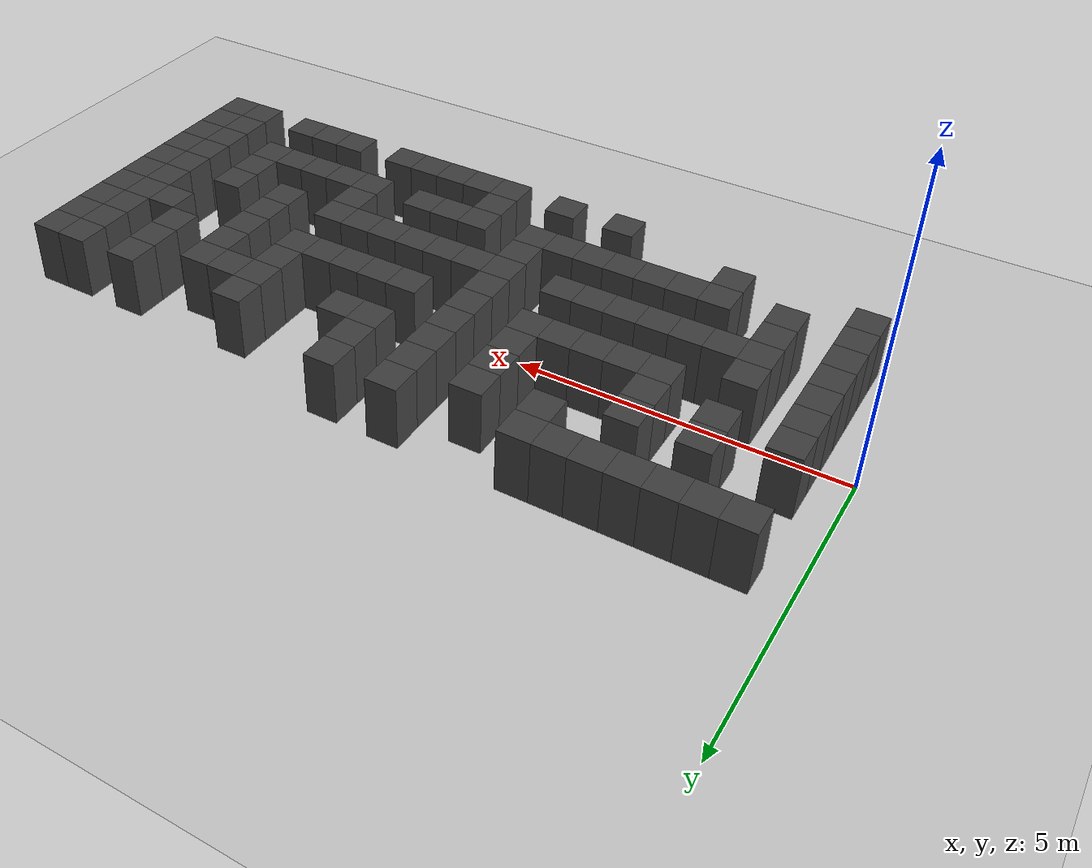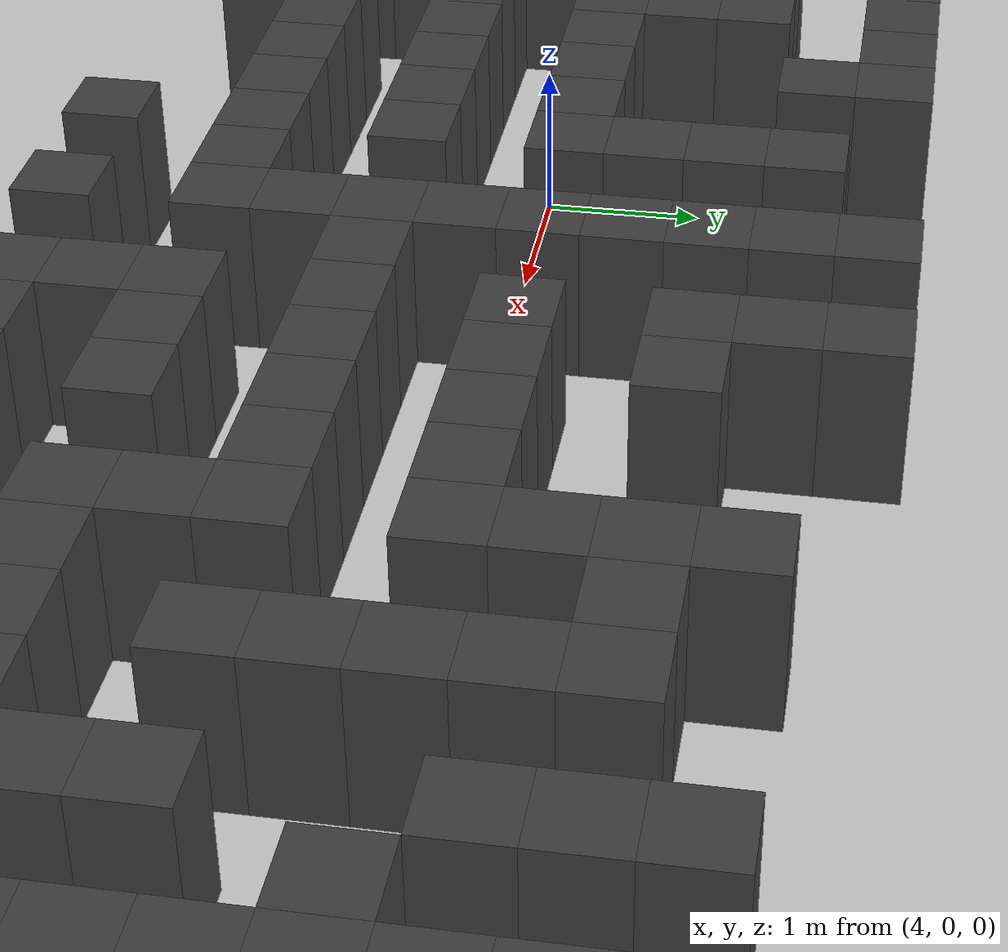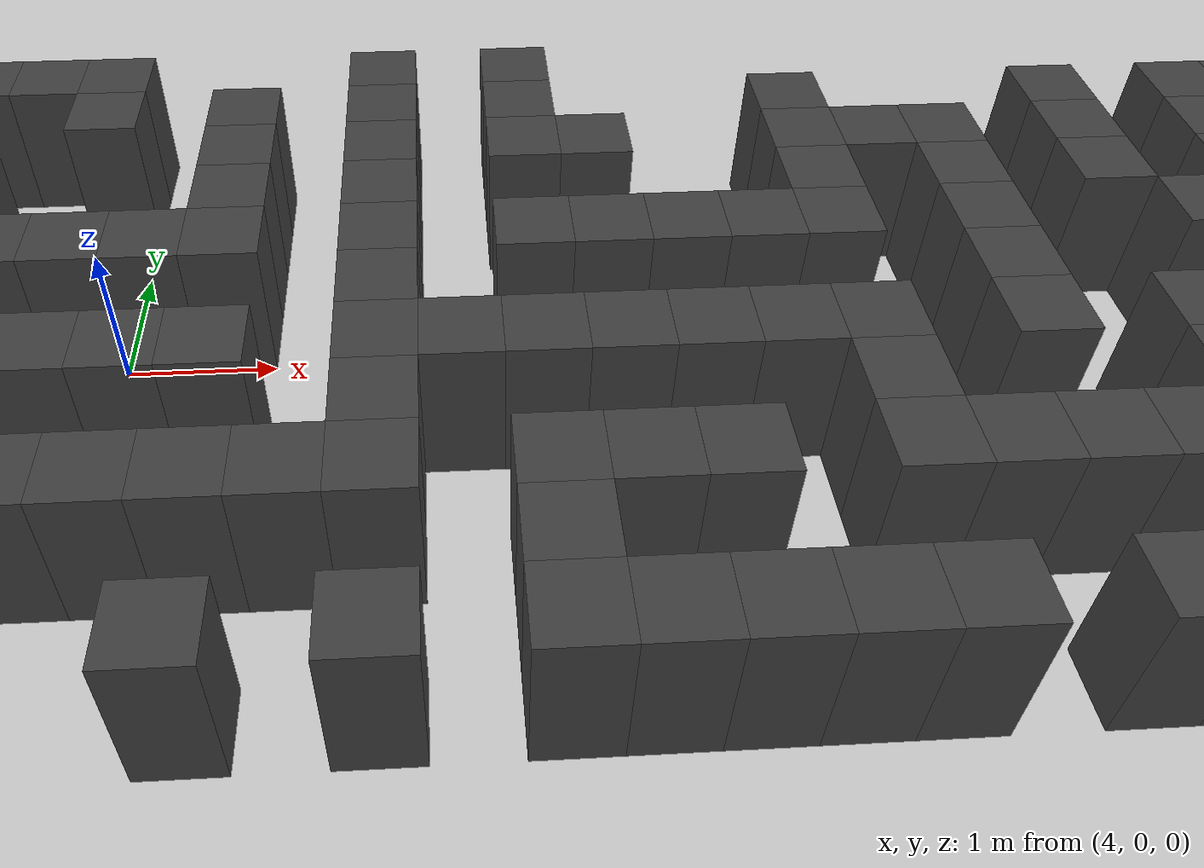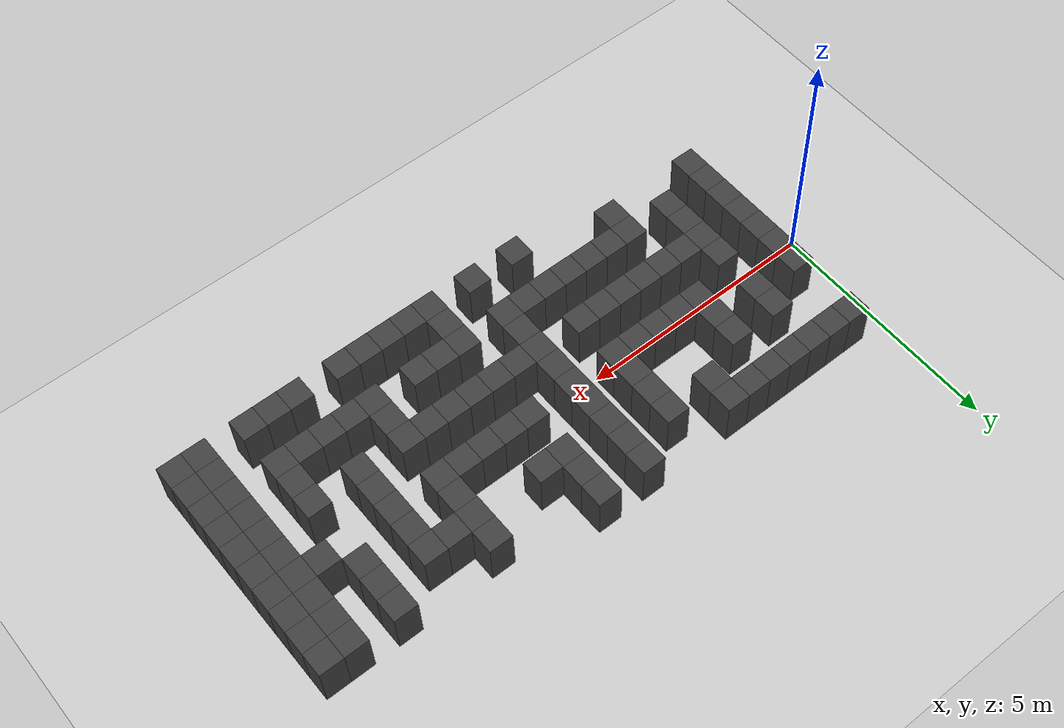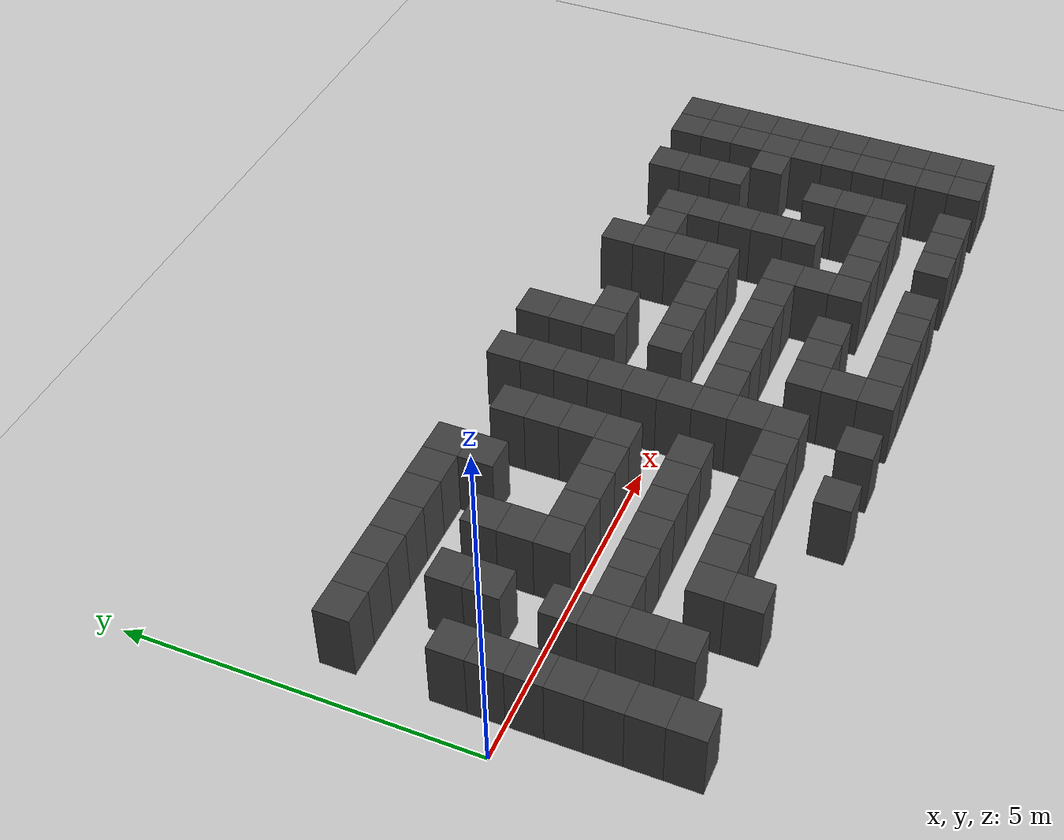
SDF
<sdf version="1.7">
 <world name="map_16048">
  <model name="ground_plane">
   <static>true</static>
   <link name="link">
    <collision name="collision">
     <geometry><plane><normal>0 0 1</normal><size>200 200</size></plane></geometry>
    </collision>
    <visual name="visual">
     <geometry><plane><normal>0 0 1</normal><size>200 200</size></plane></geometry>
     <material><ambient>0.8 0.8 0.8 1</ambient><diffuse>0.8 0.8 0.8 1</diffuse></material>
    </visual>
   </link>
  </model>
  <model name="maze_environment">
   <static>true</static>
   <link name="wall_497">
    <pose>0.750 2.250 0.500 0 0 0</pose>
    <collision name="col"><geometry><box><size>0.5 0.5 1.0</size></box></geometry></collision>
    <visual name="vis">
     <geometry><box><size>0.5 0.5 1.0</size></box></geometry>
     <material><ambient>0.15 0.15 0.15 1</ambient><diffuse>0.25 0.25 0.25 1</diffuse></material>
    </visual>
   </link>
   <link name="wall_498">
    <pose>1.250 2.250 0.500 0 0 0</pose>
    <collision name="col"><geometry><box><size>0.5 0.5 1.0</size></box></geometry></collision>
    <visual name="vis">
     <geometry><box><size>0.5 0.5 1.0</size></box></geometry>
     <material><ambient>0.15 0.15 0.15 1</ambient><diffuse>0.25 0.25 0.25 1</diffuse></material>
    </visual>
   </link>
   <link name="wall_499">
    <pose>1.750 2.250 0.500 0 0 0</pose>
    <collision name="col"><geometry><box><size>0.5 0.5 1.0</size></box></geometry></collision>
    <visual name="vis">
     <geometry><box><size>0.5 0.5 1.0</size></box></geometry>
     <material><ambient>0.15 0.15 0.15 1</ambient><diffuse>0.25 0.25 0.25 1</diffuse></material>
    </visual>
   </link>
   <link name="wall_500">
    <pose>2.250 2.250 0.500 0 0 0</pose>
    <collision name="col"><geometry><box><size>0.5 0.5 1.0</size></box></geometry></collision>
    <visual name="vis">
     <geometry><box><size>0.5 0.5 1.0</size></box></geometry>
     <material><ambient>0.15 0.15 0.15 1</ambient><diffuse>0.25 0.25 0.25 1</diffuse></material>
    </visual>
   </link>
   <link name="wall_501">
    <pose>2.750 2.250 0.500 0 0 0</pose>
    <collision name="col"><geometry><box><size>0.5 0.5 1.0</size></box></geometry></collision>
    <visual name="vis">
     <geometry><box><size>0.5 0.5 1.0</size></box></geometry>
     <material><ambient>0.15 0.15 0.15 1</ambient><diffuse>0.25 0.25 0.25 1</diffuse></material>
    </visual>
   </link>
   <link name="wall_502">
    <pose>3.250 2.250 0.500 0 0 0</pose>
    <collision name="col"><geometry><box><size>0.5 0.5 1.0</size></box></geometry></collision>
    <visual name="vis">
     <geometry><box><size>0.5 0.5 1.0</size></box></geometry>
     <material><ambient>0.15 0.15 0.15 1</ambient><diffuse>0.25 0.25 0.25 1</diffuse></material>
    </visual>
   </link>
   <link name="wall_503">
    <pose>3.750 2.250 0.500 0 0 0</pose>
    <collision name="col"><geometry><box><size>0.5 0.5 1.0</size></box></geometry></collision>
    <visual name="vis">
     <geometry><box><size>0.5 0.5 1.0</size></box></geometry>
     <material><ambient>0.15 0.15 0.15 1</ambient><diffuse>0.25 0.25 0.25 1</diffuse></material>
    </visual>
   </link>
   <link name="wall_504">
    <pose>5.750 2.250 0.500 0 0 0</pose>
    <collision name="col"><geometry><box><size>0.5 0.5 1.0</size></box></geometry></collision>
    <visual name="vis">
     <geometry><box><size>0.5 0.5 1.0</size></box></geometry>
     <material><ambient>0.15 0.15 0.15 1</ambient><diffuse>0.25 0.25 0.25 1</diffuse></material>
    </visual>
   </link>
   <link name="wall_505">
    <pose>6.750 2.250 0.500 0 0 0</pose>
    <collision name="col"><geometry><box><size>0.5 0.5 1.0</size></box></geometry></collision>
    <visual name="vis">
     <geometry><box><size>0.5 0.5 1.0</size></box></geometry>
     <material><ambient>0.15 0.15 0.15 1</ambient><diffuse>0.25 0.25 0.25 1</diffuse></material>
    </visual>
   </link>
   <link name="wall_520">
    <pose>3.750 1.750 0.500 0 0 0</pose>
    <collision name="col"><geometry><box><size>0.5 0.5 1.0</size></box></geometry></collision>
    <visual name="vis">
     <geometry><box><size>0.5 0.5 1.0</size></box></geometry>
     <material><ambient>0.15 0.15 0.15 1</ambient><diffuse>0.25 0.25 0.25 1</diffuse></material>
    </visual>
   </link>
   <link name="wall_521">
    <pose>4.750 1.750 0.500 0 0 0</pose>
    <collision name="col"><geometry><box><size>0.5 0.5 1.0</size></box></geometry></collision>
    <visual name="vis">
     <geometry><box><size>0.5 0.5 1.0</size></box></geometry>
     <material><ambient>0.15 0.15 0.15 1</ambient><diffuse>0.25 0.25 0.25 1</diffuse></material>
    </visual>
   </link>
   <link name="wall_522">
    <pose>5.750 1.750 0.500 0 0 0</pose>
    <collision name="col"><geometry><box><size>0.5 0.5 1.0</size></box></geometry></collision>
    <visual name="vis">
     <geometry><box><size>0.5 0.5 1.0</size></box></geometry>
     <material><ambient>0.15 0.15 0.15 1</ambient><diffuse>0.25 0.25 0.25 1</diffuse></material>
    </visual>
   </link>
   <link name="wall_523">
    <pose>6.750 1.750 0.500 0 0 0</pose>
    <collision name="col"><geometry><box><size>0.5 0.5 1.0</size></box></geometry></collision>
    <visual name="vis">
     <geometry><box><size>0.5 0.5 1.0</size></box></geometry>
     <material><ambient>0.15 0.15 0.15 1</ambient><diffuse>0.25 0.25 0.25 1</diffuse></material>
    </visual>
   </link>
   <link name="wall_524">
    <pose>8.750 1.750 0.500 0 0 0</pose>
    <collision name="col"><geometry><box><size>0.5 0.5 1.0</size></box></geometry></collision>
    <visual name="vis">
     <geometry><box><size>0.5 0.5 1.0</size></box></geometry>
     <material><ambient>0.15 0.15 0.15 1</ambient><diffuse>0.25 0.25 0.25 1</diffuse></material>
    </visual>
   </link>
   <link name="wall_525">
    <pose>10.750 1.750 0.500 0 0 0</pose>
    <collision name="col"><geometry><box><size>0.5 0.5 1.0</size></box></geometry></collision>
    <visual name="vis">
     <geometry><box><size>0.5 0.5 1.0</size></box></geometry>
     <material><ambient>0.15 0.15 0.15 1</ambient><diffuse>0.25 0.25 0.25 1</diffuse></material>
    </visual>
   </link>
   <link name="wall_526">
    <pose>11.750 1.750 0.500 0 0 0</pose>
    <collision name="col"><geometry><box><size>0.5 0.5 1.0</size></box></geometry></collision>
    <visual name="vis">
     <geometry><box><size>0.5 0.5 1.0</size></box></geometry>
     <material><ambient>0.15 0.15 0.15 1</ambient><diffuse>0.25 0.25 0.25 1</diffuse></material>
    </visual>
   </link>
   <link name="wall_527">
    <pose>12.250 1.750 0.500 0 0 0</pose>
    <collision name="col"><geometry><box><size>0.5 0.5 1.0</size></box></geometry></collision>
    <visual name="vis">
     <geometry><box><size>0.5 0.5 1.0</size></box></geometry>
     <material><ambient>0.15 0.15 0.15 1</ambient><diffuse>0.25 0.25 0.25 1</diffuse></material>
    </visual>
   </link>
   <link name="wall_543">
    <pose>1.750 1.250 0.500 0 0 0</pose>
    <collision name="col"><geometry><box><size>0.5 0.5 1.0</size></box></geometry></collision>
    <visual name="vis">
     <geometry><box><size>0.5 0.5 1.0</size></box></geometry>
     <material><ambient>0.15 0.15 0.15 1</ambient><diffuse>0.25 0.25 0.25 1</diffuse></material>
    </visual>
   </link>
   <link name="wall_544">
    <pose>2.750 1.250 0.500 0 0 0</pose>
    <collision name="col"><geometry><box><size>0.5 0.5 1.0</size></box></geometry></collision>
    <visual name="vis">
     <geometry><box><size>0.5 0.5 1.0</size></box></geometry>
     <material><ambient>0.15 0.15 0.15 1</ambient><diffuse>0.25 0.25 0.25 1</diffuse></material>
    </visual>
   </link>
   <link name="wall_545">
    <pose>4.750 1.250 0.500 0 0 0</pose>
    <collision name="col"><geometry><box><size>0.5 0.5 1.0</size></box></geometry></collision>
    <visual name="vis">
     <geometry><box><size>0.5 0.5 1.0</size></box></geometry>
     <material><ambient>0.15 0.15 0.15 1</ambient><diffuse>0.25 0.25 0.25 1</diffuse></material>
    </visual>
   </link>
   <link name="wall_546">
    <pose>5.750 1.250 0.500 0 0 0</pose>
    <collision name="col"><geometry><box><size>0.5 0.5 1.0</size></box></geometry></collision>
    <visual name="vis">
     <geometry><box><size>0.5 0.5 1.0</size></box></geometry>
     <material><ambient>0.15 0.15 0.15 1</ambient><diffuse>0.25 0.25 0.25 1</diffuse></material>
    </visual>
   </link>
   <link name="wall_547">
    <pose>6.750 1.250 0.500 0 0 0</pose>
    <collision name="col"><geometry><box><size>0.5 0.5 1.0</size></box></geometry></collision>
    <visual name="vis">
     <geometry><box><size>0.5 0.5 1.0</size></box></geometry>
     <material><ambient>0.15 0.15 0.15 1</ambient><diffuse>0.25 0.25 0.25 1</diffuse></material>
    </visual>
   </link>
   <link name="wall_548">
    <pose>7.250 1.250 0.500 0 0 0</pose>
    <collision name="col"><geometry><box><size>0.5 0.5 1.0</size></box></geometry></collision>
    <visual name="vis">
     <geometry><box><size>0.5 0.5 1.0</size></box></geometry>
     <material><ambient>0.15 0.15 0.15 1</ambient><diffuse>0.25 0.25 0.25 1</diffuse></material>
    </visual>
   </link>
   <link name="wall_549">
    <pose>8.750 1.250 0.500 0 0 0</pose>
    <collision name="col"><geometry><box><size>0.5 0.5 1.0</size></box></geometry></collision>
    <visual name="vis">
     <geometry><box><size>0.5 0.5 1.0</size></box></geometry>
     <material><ambient>0.15 0.15 0.15 1</ambient><diffuse>0.25 0.25 0.25 1</diffuse></material>
    </visual>
   </link>
   <link name="wall_550">
    <pose>9.250 1.250 0.500 0 0 0</pose>
    <collision name="col"><geometry><box><size>0.5 0.5 1.0</size></box></geometry></collision>
    <visual name="vis">
     <geometry><box><size>0.5 0.5 1.0</size></box></geometry>
     <material><ambient>0.15 0.15 0.15 1</ambient><diffuse>0.25 0.25 0.25 1</diffuse></material>
    </visual>
   </link>
   <link name="wall_551">
    <pose>9.750 1.250 0.500 0 0 0</pose>
    <collision name="col"><geometry><box><size>0.5 0.5 1.0</size></box></geometry></collision>
    <visual name="vis">
     <geometry><box><size>0.5 0.5 1.0</size></box></geometry>
     <material><ambient>0.15 0.15 0.15 1</ambient><diffuse>0.25 0.25 0.25 1</diffuse></material>
    </visual>
   </link>
   <link name="wall_552">
    <pose>10.750 1.250 0.500 0 0 0</pose>
    <collision name="col"><geometry><box><size>0.5 0.5 1.0</size></box></geometry></collision>
    <visual name="vis">
     <geometry><box><size>0.5 0.5 1.0</size></box></geometry>
     <material><ambient>0.15 0.15 0.15 1</ambient><diffuse>0.25 0.25 0.25 1</diffuse></material>
    </visual>
   </link>
   <link name="wall_553">
    <pose>11.750 1.250 0.500 0 0 0</pose>
    <collision name="col"><geometry><box><size>0.5 0.5 1.0</size></box></geometry></collision>
    <visual name="vis">
     <geometry><box><size>0.5 0.5 1.0</size></box></geometry>
     <material><ambient>0.15 0.15 0.15 1</ambient><diffuse>0.25 0.25 0.25 1</diffuse></material>
    </visual>
   </link>
   <link name="wall_554">
    <pose>12.250 1.250 0.500 0 0 0</pose>
    <collision name="col"><geometry><box><size>0.5 0.5 1.0</size></box></geometry></collision>
    <visual name="vis">
     <geometry><box><size>0.5 0.5 1.0</size></box></geometry>
     <material><ambient>0.15 0.15 0.15 1</ambient><diffuse>0.25 0.25 0.25 1</diffuse></material>
    </visual>
   </link>
   <link name="wall_561">
    <pose>0.750 0.750 0.500 0 0 0</pose>
    <collision name="col"><geometry><box><size>0.5 0.5 1.0</size></box></geometry></collision>
    <visual name="vis">
     <geometry><box><size>0.5 0.5 1.0</size></box></geometry>
     <material><ambient>0.15 0.15 0.15 1</ambient><diffuse>0.25 0.25 0.25 1</diffuse></material>
    </visual>
   </link>
   <link name="wall_562">
    <pose>1.750 0.750 0.500 0 0 0</pose>
    <collision name="col"><geometry><box><size>0.5 0.5 1.0</size></box></geometry></collision>
    <visual name="vis">
     <geometry><box><size>0.5 0.5 1.0</size></box></geometry>
     <material><ambient>0.15 0.15 0.15 1</ambient><diffuse>0.25 0.25 0.25 1</diffuse></material>
    </visual>
   </link>
   <link name="wall_563">
    <pose>2.750 0.750 0.500 0 0 0</pose>
    <collision name="col"><geometry><box><size>0.5 0.5 1.0</size></box></geometry></collision>
    <visual name="vis">
     <geometry><box><size>0.5 0.5 1.0</size></box></geometry>
     <material><ambient>0.15 0.15 0.15 1</ambient><diffuse>0.25 0.25 0.25 1</diffuse></material>
    </visual>
   </link>
   <link name="wall_564">
    <pose>4.750 0.750 0.500 0 0 0</pose>
    <collision name="col"><geometry><box><size>0.5 0.5 1.0</size></box></geometry></collision>
    <visual name="vis">
     <geometry><box><size>0.5 0.5 1.0</size></box></geometry>
     <material><ambient>0.15 0.15 0.15 1</ambient><diffuse>0.25 0.25 0.25 1</diffuse></material>
    </visual>
   </link>
   <link name="wall_565">
    <pose>5.750 0.750 0.500 0 0 0</pose>
    <collision name="col"><geometry><box><size>0.5 0.5 1.0</size></box></geometry></collision>
    <visual name="vis">
     <geometry><box><size>0.5 0.5 1.0</size></box></geometry>
     <material><ambient>0.15 0.15 0.15 1</ambient><diffuse>0.25 0.25 0.25 1</diffuse></material>
    </visual>
   </link>
   <link name="wall_566">
    <pose>8.750 0.750 0.500 0 0 0</pose>
    <collision name="col"><geometry><box><size>0.5 0.5 1.0</size></box></geometry></collision>
    <visual name="vis">
     <geometry><box><size>0.5 0.5 1.0</size></box></geometry>
     <material><ambient>0.15 0.15 0.15 1</ambient><diffuse>0.25 0.25 0.25 1</diffuse></material>
    </visual>
   </link>
   <link name="wall_567">
    <pose>9.750 0.750 0.500 0 0 0</pose>
    <collision name="col"><geometry><box><size>0.5 0.5 1.0</size></box></geometry></collision>
    <visual name="vis">
     <geometry><box><size>0.5 0.5 1.0</size></box></geometry>
     <material><ambient>0.15 0.15 0.15 1</ambient><diffuse>0.25 0.25 0.25 1</diffuse></material>
    </visual>
   </link>
   <link name="wall_568">
    <pose>10.750 0.750 0.500 0 0 0</pose>
    <collision name="col"><geometry><box><size>0.5 0.5 1.0</size></box></geometry></collision>
    <visual name="vis">
     <geometry><box><size>0.5 0.5 1.0</size></box></geometry>
     <material><ambient>0.15 0.15 0.15 1</ambient><diffuse>0.25 0.25 0.25 1</diffuse></material>
    </visual>
   </link>
   <link name="wall_569">
    <pose>11.750 0.750 0.500 0 0 0</pose>
    <collision name="col"><geometry><box><size>0.5 0.5 1.0</size></box></geometry></collision>
    <visual name="vis">
     <geometry><box><size>0.5 0.5 1.0</size></box></geometry>
     <material><ambient>0.15 0.15 0.15 1</ambient><diffuse>0.25 0.25 0.25 1</diffuse></material>
    </visual>
   </link>
   <link name="wall_570">
    <pose>12.250 0.750 0.500 0 0 0</pose>
    <collision name="col"><geometry><box><size>0.5 0.5 1.0</size></box></geometry></collision>
    <visual name="vis">
     <geometry><box><size>0.5 0.5 1.0</size></box></geometry>
     <material><ambient>0.15 0.15 0.15 1</ambient><diffuse>0.25 0.25 0.25 1</diffuse></material>
    </visual>
   </link>
   <link name="wall_587">
    <pose>0.750 0.250 0.500 0 0 0</pose>
    <collision name="col"><geometry><box><size>0.5 0.5 1.0</size></box></geometry></collision>
    <visual name="vis">
     <geometry><box><size>0.5 0.5 1.0</size></box></geometry>
     <material><ambient>0.15 0.15 0.15 1</ambient><diffuse>0.25 0.25 0.25 1</diffuse></material>
    </visual>
   </link>
   <link name="wall_588">
    <pose>2.750 0.250 0.500 0 0 0</pose>
    <collision name="col"><geometry><box><size>0.5 0.5 1.0</size></box></geometry></collision>
    <visual name="vis">
     <geometry><box><size>0.5 0.5 1.0</size></box></geometry>
     <material><ambient>0.15 0.15 0.15 1</ambient><diffuse>0.25 0.25 0.25 1</diffuse></material>
    </visual>
   </link>
   <link name="wall_589">
    <pose>3.250 0.250 0.500 0 0 0</pose>
    <collision name="col"><geometry><box><size>0.5 0.5 1.0</size></box></geometry></collision>
    <visual name="vis">
     <geometry><box><size>0.5 0.5 1.0</size></box></geometry>
     <material><ambient>0.15 0.15 0.15 1</ambient><diffuse>0.25 0.25 0.25 1</diffuse></material>
    </visual>
   </link>
   <link name="wall_590">
    <pose>3.750 0.250 0.500 0 0 0</pose>
    <collision name="col"><geometry><box><size>0.5 0.5 1.0</size></box></geometry></collision>
    <visual name="vis">
     <geometry><box><size>0.5 0.5 1.0</size></box></geometry>
     <material><ambient>0.15 0.15 0.15 1</ambient><diffuse>0.25 0.25 0.25 1</diffuse></material>
    </visual>
   </link>
   <link name="wall_591">
    <pose>4.250 0.250 0.500 0 0 0</pose>
    <collision name="col"><geometry><box><size>0.5 0.5 1.0</size></box></geometry></collision>
    <visual name="vis">
     <geometry><box><size>0.5 0.5 1.0</size></box></geometry>
     <material><ambient>0.15 0.15 0.15 1</ambient><diffuse>0.25 0.25 0.25 1</diffuse></material>
    </visual>
   </link>
   <link name="wall_592">
    <pose>4.750 0.250 0.500 0 0 0</pose>
    <collision name="col"><geometry><box><size>0.5 0.5 1.0</size></box></geometry></collision>
    <visual name="vis">
     <geometry><box><size>0.5 0.5 1.0</size></box></geometry>
     <material><ambient>0.15 0.15 0.15 1</ambient><diffuse>0.25 0.25 0.25 1</diffuse></material>
    </visual>
   </link>
   <link name="wall_593">
    <pose>5.750 0.250 0.500 0 0 0</pose>
    <collision name="col"><geometry><box><size>0.5 0.5 1.0</size></box></geometry></collision>
    <visual name="vis">
     <geometry><box><size>0.5 0.5 1.0</size></box></geometry>
     <material><ambient>0.15 0.15 0.15 1</ambient><diffuse>0.25 0.25 0.25 1</diffuse></material>
    </visual>
   </link>
   <link name="wall_594">
    <pose>6.750 0.250 0.500 0 0 0</pose>
    <collision name="col"><geometry><box><size>0.5 0.5 1.0</size></box></geometry></collision>
    <visual name="vis">
     <geometry><box><size>0.5 0.5 1.0</size></box></geometry>
     <material><ambient>0.15 0.15 0.15 1</ambient><diffuse>0.25 0.25 0.25 1</diffuse></material>
    </visual>
   </link>
   <link name="wall_595">
    <pose>7.250 0.250 0.500 0 0 0</pose>
    <collision name="col"><geometry><box><size>0.5 0.5 1.0</size></box></geometry></collision>
    <visual name="vis">
     <geometry><box><size>0.5 0.5 1.0</size></box></geometry>
     <material><ambient>0.15 0.15 0.15 1</ambient><diffuse>0.25 0.25 0.25 1</diffuse></material>
    </visual>
   </link>
   <link name="wall_596">
    <pose>7.750 0.250 0.500 0 0 0</pose>
    <collision name="col"><geometry><box><size>0.5 0.5 1.0</size></box></geometry></collision>
    <visual name="vis">
     <geometry><box><size>0.5 0.5 1.0</size></box></geometry>
     <material><ambient>0.15 0.15 0.15 1</ambient><diffuse>0.25 0.25 0.25 1</diffuse></material>
    </visual>
   </link>
   <link name="wall_597">
    <pose>8.250 0.250 0.500 0 0 0</pose>
    <collision name="col"><geometry><box><size>0.5 0.5 1.0</size></box></geometry></collision>
    <visual name="vis">
     <geometry><box><size>0.5 0.5 1.0</size></box></geometry>
     <material><ambient>0.15 0.15 0.15 1</ambient><diffuse>0.25 0.25 0.25 1</diffuse></material>
    </visual>
   </link>
   <link name="wall_598">
    <pose>8.750 0.250 0.500 0 0 0</pose>
    <collision name="col"><geometry><box><size>0.5 0.5 1.0</size></box></geometry></collision>
    <visual name="vis">
     <geometry><box><size>0.5 0.5 1.0</size></box></geometry>
     <material><ambient>0.15 0.15 0.15 1</ambient><diffuse>0.25 0.25 0.25 1</diffuse></material>
    </visual>
   </link>
   <link name="wall_599">
    <pose>9.750 0.250 0.500 0 0 0</pose>
    <collision name="col"><geometry><box><size>0.5 0.5 1.0</size></box></geometry></collision>
    <visual name="vis">
     <geometry><box><size>0.5 0.5 1.0</size></box></geometry>
     <material><ambient>0.15 0.15 0.15 1</ambient><diffuse>0.25 0.25 0.25 1</diffuse></material>
    </visual>
   </link>
   <link name="wall_600">
    <pose>11.250 0.250 0.500 0 0 0</pose>
    <collision name="col"><geometry><box><size>0.5 0.5 1.0</size></box></geometry></collision>
    <visual name="vis">
     <geometry><box><size>0.5 0.5 1.0</size></box></geometry>
     <material><ambient>0.15 0.15 0.15 1</ambient><diffuse>0.25 0.25 0.25 1</diffuse></material>
    </visual>
   </link>
   <link name="wall_601">
    <pose>11.750 0.250 0.500 0 0 0</pose>
    <collision name="col"><geometry><box><size>0.5 0.5 1.0</size></box></geometry></collision>
    <visual name="vis">
     <geometry><box><size>0.5 0.5 1.0</size></box></geometry>
     <material><ambient>0.15 0.15 0.15 1</ambient><diffuse>0.25 0.25 0.25 1</diffuse></material>
    </visual>
   </link>
   <link name="wall_602">
    <pose>12.250 0.250 0.500 0 0 0</pose>
    <collision name="col"><geometry><box><size>0.5 0.5 1.0</size></box></geometry></collision>
    <visual name="vis">
     <geometry><box><size>0.5 0.5 1.0</size></box></geometry>
     <material><ambient>0.15 0.15 0.15 1</ambient><diffuse>0.25 0.25 0.25 1</diffuse></material>
    </visual>
   </link>
   <link name="wall_611">
    <pose>0.750 -0.250 0.500 0 0 0</pose>
    <collision name="col"><geometry><box><size>0.5 0.5 1.0</size></box></geometry></collision>
    <visual name="vis">
     <geometry><box><size>0.5 0.5 1.0</size></box></geometry>
     <material><ambient>0.15 0.15 0.15 1</ambient><diffuse>0.25 0.25 0.25 1</diffuse></material>
    </visual>
   </link>
   <link name="wall_612">
    <pose>1.750 -0.250 0.500 0 0 0</pose>
    <collision name="col"><geometry><box><size>0.5 0.5 1.0</size></box></geometry></collision>
    <visual name="vis">
     <geometry><box><size>0.5 0.5 1.0</size></box></geometry>
     <material><ambient>0.15 0.15 0.15 1</ambient><diffuse>0.25 0.25 0.25 1</diffuse></material>
    </visual>
   </link>
   <link name="wall_613">
    <pose>5.750 -0.250 0.500 0 0 0</pose>
    <collision name="col"><geometry><box><size>0.5 0.5 1.0</size></box></geometry></collision>
    <visual name="vis">
     <geometry><box><size>0.5 0.5 1.0</size></box></geometry>
     <material><ambient>0.15 0.15 0.15 1</ambient><diffuse>0.25 0.25 0.25 1</diffuse></material>
    </visual>
   </link>
   <link name="wall_614">
    <pose>9.750 -0.250 0.500 0 0 0</pose>
    <collision name="col"><geometry><box><size>0.5 0.5 1.0</size></box></geometry></collision>
    <visual name="vis">
     <geometry><box><size>0.5 0.5 1.0</size></box></geometry>
     <material><ambient>0.15 0.15 0.15 1</ambient><diffuse>0.25 0.25 0.25 1</diffuse></material>
    </visual>
   </link>
   <link name="wall_615">
    <pose>11.750 -0.250 0.500 0 0 0</pose>
    <collision name="col"><geometry><box><size>0.5 0.5 1.0</size></box></geometry></collision>
    <visual name="vis">
     <geometry><box><size>0.5 0.5 1.0</size></box></geometry>
     <material><ambient>0.15 0.15 0.15 1</ambient><diffuse>0.25 0.25 0.25 1</diffuse></material>
    </visual>
   </link>
   <link name="wall_616">
    <pose>12.250 -0.250 0.500 0 0 0</pose>
    <collision name="col"><geometry><box><size>0.5 0.5 1.0</size></box></geometry></collision>
    <visual name="vis">
     <geometry><box><size>0.5 0.5 1.0</size></box></geometry>
     <material><ambient>0.15 0.15 0.15 1</ambient><diffuse>0.25 0.25 0.25 1</diffuse></material>
    </visual>
   </link>
   <link name="wall_633">
    <pose>0.750 -0.750 0.500 0 0 0</pose>
    <collision name="col"><geometry><box><size>0.5 0.5 1.0</size></box></geometry></collision>
    <visual name="vis">
     <geometry><box><size>0.5 0.5 1.0</size></box></geometry>
     <material><ambient>0.15 0.15 0.15 1</ambient><diffuse>0.25 0.25 0.25 1</diffuse></material>
    </visual>
   </link>
   <link name="wall_634">
    <pose>1.750 -0.750 0.500 0 0 0</pose>
    <collision name="col"><geometry><box><size>0.5 0.5 1.0</size></box></geometry></collision>
    <visual name="vis">
     <geometry><box><size>0.5 0.5 1.0</size></box></geometry>
     <material><ambient>0.15 0.15 0.15 1</ambient><diffuse>0.25 0.25 0.25 1</diffuse></material>
    </visual>
   </link>
   <link name="wall_635">
    <pose>2.250 -0.750 0.500 0 0 0</pose>
    <collision name="col"><geometry><box><size>0.5 0.5 1.0</size></box></geometry></collision>
    <visual name="vis">
     <geometry><box><size>0.5 0.5 1.0</size></box></geometry>
     <material><ambient>0.15 0.15 0.15 1</ambient><diffuse>0.25 0.25 0.25 1</diffuse></material>
    </visual>
   </link>
   <link name="wall_636">
    <pose>2.750 -0.750 0.500 0 0 0</pose>
    <collision name="col"><geometry><box><size>0.5 0.5 1.0</size></box></geometry></collision>
    <visual name="vis">
     <geometry><box><size>0.5 0.5 1.0</size></box></geometry>
     <material><ambient>0.15 0.15 0.15 1</ambient><diffuse>0.25 0.25 0.25 1</diffuse></material>
    </visual>
   </link>
   <link name="wall_637">
    <pose>3.250 -0.750 0.500 0 0 0</pose>
    <collision name="col"><geometry><box><size>0.5 0.5 1.0</size></box></geometry></collision>
    <visual name="vis">
     <geometry><box><size>0.5 0.5 1.0</size></box></geometry>
     <material><ambient>0.15 0.15 0.15 1</ambient><diffuse>0.25 0.25 0.25 1</diffuse></material>
    </visual>
   </link>
   <link name="wall_638">
    <pose>3.750 -0.750 0.500 0 0 0</pose>
    <collision name="col"><geometry><box><size>0.5 0.5 1.0</size></box></geometry></collision>
    <visual name="vis">
     <geometry><box><size>0.5 0.5 1.0</size></box></geometry>
     <material><ambient>0.15 0.15 0.15 1</ambient><diffuse>0.25 0.25 0.25 1</diffuse></material>
    </visual>
   </link>
   <link name="wall_639">
    <pose>4.250 -0.750 0.500 0 0 0</pose>
    <collision name="col"><geometry><box><size>0.5 0.5 1.0</size></box></geometry></collision>
    <visual name="vis">
     <geometry><box><size>0.5 0.5 1.0</size></box></geometry>
     <material><ambient>0.15 0.15 0.15 1</ambient><diffuse>0.25 0.25 0.25 1</diffuse></material>
    </visual>
   </link>
   <link name="wall_640">
    <pose>4.750 -0.750 0.500 0 0 0</pose>
    <collision name="col"><geometry><box><size>0.5 0.5 1.0</size></box></geometry></collision>
    <visual name="vis">
     <geometry><box><size>0.5 0.5 1.0</size></box></geometry>
     <material><ambient>0.15 0.15 0.15 1</ambient><diffuse>0.25 0.25 0.25 1</diffuse></material>
    </visual>
   </link>
   <link name="wall_641">
    <pose>5.750 -0.750 0.500 0 0 0</pose>
    <collision name="col"><geometry><box><size>0.5 0.5 1.0</size></box></geometry></collision>
    <visual name="vis">
     <geometry><box><size>0.5 0.5 1.0</size></box></geometry>
     <material><ambient>0.15 0.15 0.15 1</ambient><diffuse>0.25 0.25 0.25 1</diffuse></material>
    </visual>
   </link>
   <link name="wall_642">
    <pose>6.250 -0.750 0.500 0 0 0</pose>
    <collision name="col"><geometry><box><size>0.5 0.5 1.0</size></box></geometry></collision>
    <visual name="vis">
     <geometry><box><size>0.5 0.5 1.0</size></box></geometry>
     <material><ambient>0.15 0.15 0.15 1</ambient><diffuse>0.25 0.25 0.25 1</diffuse></material>
    </visual>
   </link>
   <link name="wall_643">
    <pose>6.750 -0.750 0.500 0 0 0</pose>
    <collision name="col"><geometry><box><size>0.5 0.5 1.0</size></box></geometry></collision>
    <visual name="vis">
     <geometry><box><size>0.5 0.5 1.0</size></box></geometry>
     <material><ambient>0.15 0.15 0.15 1</ambient><diffuse>0.25 0.25 0.25 1</diffuse></material>
    </visual>
   </link>
   <link name="wall_644">
    <pose>7.250 -0.750 0.500 0 0 0</pose>
    <collision name="col"><geometry><box><size>0.5 0.5 1.0</size></box></geometry></collision>
    <visual name="vis">
     <geometry><box><size>0.5 0.5 1.0</size></box></geometry>
     <material><ambient>0.15 0.15 0.15 1</ambient><diffuse>0.25 0.25 0.25 1</diffuse></material>
    </visual>
   </link>
   <link name="wall_645">
    <pose>7.750 -0.750 0.500 0 0 0</pose>
    <collision name="col"><geometry><box><size>0.5 0.5 1.0</size></box></geometry></collision>
    <visual name="vis">
     <geometry><box><size>0.5 0.5 1.0</size></box></geometry>
     <material><ambient>0.15 0.15 0.15 1</ambient><diffuse>0.25 0.25 0.25 1</diffuse></material>
    </visual>
   </link>
   <link name="wall_646">
    <pose>8.250 -0.750 0.500 0 0 0</pose>
    <collision name="col"><geometry><box><size>0.5 0.5 1.0</size></box></geometry></collision>
    <visual name="vis">
     <geometry><box><size>0.5 0.5 1.0</size></box></geometry>
     <material><ambient>0.15 0.15 0.15 1</ambient><diffuse>0.25 0.25 0.25 1</diffuse></material>
    </visual>
   </link>
   <link name="wall_647">
    <pose>8.750 -0.750 0.500 0 0 0</pose>
    <collision name="col"><geometry><box><size>0.5 0.5 1.0</size></box></geometry></collision>
    <visual name="vis">
     <geometry><box><size>0.5 0.5 1.0</size></box></geometry>
     <material><ambient>0.15 0.15 0.15 1</ambient><diffuse>0.25 0.25 0.25 1</diffuse></material>
    </visual>
   </link>
   <link name="wall_648">
    <pose>9.750 -0.750 0.500 0 0 0</pose>
    <collision name="col"><geometry><box><size>0.5 0.5 1.0</size></box></geometry></collision>
    <visual name="vis">
     <geometry><box><size>0.5 0.5 1.0</size></box></geometry>
     <material><ambient>0.15 0.15 0.15 1</ambient><diffuse>0.25 0.25 0.25 1</diffuse></material>
    </visual>
   </link>
   <link name="wall_649">
    <pose>10.750 -0.750 0.500 0 0 0</pose>
    <collision name="col"><geometry><box><size>0.5 0.5 1.0</size></box></geometry></collision>
    <visual name="vis">
     <geometry><box><size>0.5 0.5 1.0</size></box></geometry>
     <material><ambient>0.15 0.15 0.15 1</ambient><diffuse>0.25 0.25 0.25 1</diffuse></material>
    </visual>
   </link>
   <link name="wall_650">
    <pose>11.750 -0.750 0.500 0 0 0</pose>
    <collision name="col"><geometry><box><size>0.5 0.5 1.0</size></box></geometry></collision>
    <visual name="vis">
     <geometry><box><size>0.5 0.5 1.0</size></box></geometry>
     <material><ambient>0.15 0.15 0.15 1</ambient><diffuse>0.25 0.25 0.25 1</diffuse></material>
    </visual>
   </link>
   <link name="wall_651">
    <pose>12.250 -0.750 0.500 0 0 0</pose>
    <collision name="col"><geometry><box><size>0.5 0.5 1.0</size></box></geometry></collision>
    <visual name="vis">
     <geometry><box><size>0.5 0.5 1.0</size></box></geometry>
     <material><ambient>0.15 0.15 0.15 1</ambient><diffuse>0.25 0.25 0.25 1</diffuse></material>
    </visual>
   </link>
   <link name="wall_659">
    <pose>0.750 -1.250 0.500 0 0 0</pose>
    <collision name="col"><geometry><box><size>0.5 0.5 1.0</size></box></geometry></collision>
    <visual name="vis">
     <geometry><box><size>0.5 0.5 1.0</size></box></geometry>
     <material><ambient>0.15 0.15 0.15 1</ambient><diffuse>0.25 0.25 0.25 1</diffuse></material>
    </visual>
   </link>
   <link name="wall_660">
    <pose>1.750 -1.250 0.500 0 0 0</pose>
    <collision name="col"><geometry><box><size>0.5 0.5 1.0</size></box></geometry></collision>
    <visual name="vis">
     <geometry><box><size>0.5 0.5 1.0</size></box></geometry>
     <material><ambient>0.15 0.15 0.15 1</ambient><diffuse>0.25 0.25 0.25 1</diffuse></material>
    </visual>
   </link>
   <link name="wall_661">
    <pose>5.750 -1.250 0.500 0 0 0</pose>
    <collision name="col"><geometry><box><size>0.5 0.5 1.0</size></box></geometry></collision>
    <visual name="vis">
     <geometry><box><size>0.5 0.5 1.0</size></box></geometry>
     <material><ambient>0.15 0.15 0.15 1</ambient><diffuse>0.25 0.25 0.25 1</diffuse></material>
    </visual>
   </link>
   <link name="wall_662">
    <pose>8.750 -1.250 0.500 0 0 0</pose>
    <collision name="col"><geometry><box><size>0.5 0.5 1.0</size></box></geometry></collision>
    <visual name="vis">
     <geometry><box><size>0.5 0.5 1.0</size></box></geometry>
     <material><ambient>0.15 0.15 0.15 1</ambient><diffuse>0.25 0.25 0.25 1</diffuse></material>
    </visual>
   </link>
   <link name="wall_663">
    <pose>10.750 -1.250 0.500 0 0 0</pose>
    <collision name="col"><geometry><box><size>0.5 0.5 1.0</size></box></geometry></collision>
    <visual name="vis">
     <geometry><box><size>0.5 0.5 1.0</size></box></geometry>
     <material><ambient>0.15 0.15 0.15 1</ambient><diffuse>0.25 0.25 0.25 1</diffuse></material>
    </visual>
   </link>
   <link name="wall_664">
    <pose>11.750 -1.250 0.500 0 0 0</pose>
    <collision name="col"><geometry><box><size>0.5 0.5 1.0</size></box></geometry></collision>
    <visual name="vis">
     <geometry><box><size>0.5 0.5 1.0</size></box></geometry>
     <material><ambient>0.15 0.15 0.15 1</ambient><diffuse>0.25 0.25 0.25 1</diffuse></material>
    </visual>
   </link>
   <link name="wall_665">
    <pose>12.250 -1.250 0.500 0 0 0</pose>
    <collision name="col"><geometry><box><size>0.5 0.5 1.0</size></box></geometry></collision>
    <visual name="vis">
     <geometry><box><size>0.5 0.5 1.0</size></box></geometry>
     <material><ambient>0.15 0.15 0.15 1</ambient><diffuse>0.25 0.25 0.25 1</diffuse></material>
    </visual>
   </link>
   <link name="wall_682">
    <pose>0.750 -1.750 0.500 0 0 0</pose>
    <collision name="col"><geometry><box><size>0.5 0.5 1.0</size></box></geometry></collision>
    <visual name="vis">
     <geometry><box><size>0.5 0.5 1.0</size></box></geometry>
     <material><ambient>0.15 0.15 0.15 1</ambient><diffuse>0.25 0.25 0.25 1</diffuse></material>
    </visual>
   </link>
   <link name="wall_683">
    <pose>1.750 -1.750 0.500 0 0 0</pose>
    <collision name="col"><geometry><box><size>0.5 0.5 1.0</size></box></geometry></collision>
    <visual name="vis">
     <geometry><box><size>0.5 0.5 1.0</size></box></geometry>
     <material><ambient>0.15 0.15 0.15 1</ambient><diffuse>0.25 0.25 0.25 1</diffuse></material>
    </visual>
   </link>
   <link name="wall_684">
    <pose>2.750 -1.750 0.500 0 0 0</pose>
    <collision name="col"><geometry><box><size>0.5 0.5 1.0</size></box></geometry></collision>
    <visual name="vis">
     <geometry><box><size>0.5 0.5 1.0</size></box></geometry>
     <material><ambient>0.15 0.15 0.15 1</ambient><diffuse>0.25 0.25 0.25 1</diffuse></material>
    </visual>
   </link>
   <link name="wall_685">
    <pose>3.250 -1.750 0.500 0 0 0</pose>
    <collision name="col"><geometry><box><size>0.5 0.5 1.0</size></box></geometry></collision>
    <visual name="vis">
     <geometry><box><size>0.5 0.5 1.0</size></box></geometry>
     <material><ambient>0.15 0.15 0.15 1</ambient><diffuse>0.25 0.25 0.25 1</diffuse></material>
    </visual>
   </link>
   <link name="wall_686">
    <pose>3.750 -1.750 0.500 0 0 0</pose>
    <collision name="col"><geometry><box><size>0.5 0.5 1.0</size></box></geometry></collision>
    <visual name="vis">
     <geometry><box><size>0.5 0.5 1.0</size></box></geometry>
     <material><ambient>0.15 0.15 0.15 1</ambient><diffuse>0.25 0.25 0.25 1</diffuse></material>
    </visual>
   </link>
   <link name="wall_687">
    <pose>4.250 -1.750 0.500 0 0 0</pose>
    <collision name="col"><geometry><box><size>0.5 0.5 1.0</size></box></geometry></collision>
    <visual name="vis">
     <geometry><box><size>0.5 0.5 1.0</size></box></geometry>
     <material><ambient>0.15 0.15 0.15 1</ambient><diffuse>0.25 0.25 0.25 1</diffuse></material>
    </visual>
   </link>
   <link name="wall_688">
    <pose>4.750 -1.750 0.500 0 0 0</pose>
    <collision name="col"><geometry><box><size>0.5 0.5 1.0</size></box></geometry></collision>
    <visual name="vis">
     <geometry><box><size>0.5 0.5 1.0</size></box></geometry>
     <material><ambient>0.15 0.15 0.15 1</ambient><diffuse>0.25 0.25 0.25 1</diffuse></material>
    </visual>
   </link>
   <link name="wall_689">
    <pose>5.250 -1.750 0.500 0 0 0</pose>
    <collision name="col"><geometry><box><size>0.5 0.5 1.0</size></box></geometry></collision>
    <visual name="vis">
     <geometry><box><size>0.5 0.5 1.0</size></box></geometry>
     <material><ambient>0.15 0.15 0.15 1</ambient><diffuse>0.25 0.25 0.25 1</diffuse></material>
    </visual>
   </link>
   <link name="wall_690">
    <pose>5.750 -1.750 0.500 0 0 0</pose>
    <collision name="col"><geometry><box><size>0.5 0.5 1.0</size></box></geometry></collision>
    <visual name="vis">
     <geometry><box><size>0.5 0.5 1.0</size></box></geometry>
     <material><ambient>0.15 0.15 0.15 1</ambient><diffuse>0.25 0.25 0.25 1</diffuse></material>
    </visual>
   </link>
   <link name="wall_691">
    <pose>6.750 -1.750 0.500 0 0 0</pose>
    <collision name="col"><geometry><box><size>0.5 0.5 1.0</size></box></geometry></collision>
    <visual name="vis">
     <geometry><box><size>0.5 0.5 1.0</size></box></geometry>
     <material><ambient>0.15 0.15 0.15 1</ambient><diffuse>0.25 0.25 0.25 1</diffuse></material>
    </visual>
   </link>
   <link name="wall_692">
    <pose>7.250 -1.750 0.500 0 0 0</pose>
    <collision name="col"><geometry><box><size>0.5 0.5 1.0</size></box></geometry></collision>
    <visual name="vis">
     <geometry><box><size>0.5 0.5 1.0</size></box></geometry>
     <material><ambient>0.15 0.15 0.15 1</ambient><diffuse>0.25 0.25 0.25 1</diffuse></material>
    </visual>
   </link>
   <link name="wall_693">
    <pose>7.750 -1.750 0.500 0 0 0</pose>
    <collision name="col"><geometry><box><size>0.5 0.5 1.0</size></box></geometry></collision>
    <visual name="vis">
     <geometry><box><size>0.5 0.5 1.0</size></box></geometry>
     <material><ambient>0.15 0.15 0.15 1</ambient><diffuse>0.25 0.25 0.25 1</diffuse></material>
    </visual>
   </link>
   <link name="wall_694">
    <pose>8.750 -1.750 0.500 0 0 0</pose>
    <collision name="col"><geometry><box><size>0.5 0.5 1.0</size></box></geometry></collision>
    <visual name="vis">
     <geometry><box><size>0.5 0.5 1.0</size></box></geometry>
     <material><ambient>0.15 0.15 0.15 1</ambient><diffuse>0.25 0.25 0.25 1</diffuse></material>
    </visual>
   </link>
   <link name="wall_695">
    <pose>9.250 -1.750 0.500 0 0 0</pose>
    <collision name="col"><geometry><box><size>0.5 0.5 1.0</size></box></geometry></collision>
    <visual name="vis">
     <geometry><box><size>0.5 0.5 1.0</size></box></geometry>
     <material><ambient>0.15 0.15 0.15 1</ambient><diffuse>0.25 0.25 0.25 1</diffuse></material>
    </visual>
   </link>
   <link name="wall_696">
    <pose>9.750 -1.750 0.500 0 0 0</pose>
    <collision name="col"><geometry><box><size>0.5 0.5 1.0</size></box></geometry></collision>
    <visual name="vis">
     <geometry><box><size>0.5 0.5 1.0</size></box></geometry>
     <material><ambient>0.15 0.15 0.15 1</ambient><diffuse>0.25 0.25 0.25 1</diffuse></material>
    </visual>
   </link>
   <link name="wall_697">
    <pose>10.250 -1.750 0.500 0 0 0</pose>
    <collision name="col"><geometry><box><size>0.5 0.5 1.0</size></box></geometry></collision>
    <visual name="vis">
     <geometry><box><size>0.5 0.5 1.0</size></box></geometry>
     <material><ambient>0.15 0.15 0.15 1</ambient><diffuse>0.25 0.25 0.25 1</diffuse></material>
    </visual>
   </link>
   <link name="wall_698">
    <pose>10.750 -1.750 0.500 0 0 0</pose>
    <collision name="col"><geometry><box><size>0.5 0.5 1.0</size></box></geometry></collision>
    <visual name="vis">
     <geometry><box><size>0.5 0.5 1.0</size></box></geometry>
     <material><ambient>0.15 0.15 0.15 1</ambient><diffuse>0.25 0.25 0.25 1</diffuse></material>
    </visual>
   </link>
   <link name="wall_699">
    <pose>11.750 -1.750 0.500 0 0 0</pose>
    <collision name="col"><geometry><box><size>0.5 0.5 1.0</size></box></geometry></collision>
    <visual name="vis">
     <geometry><box><size>0.5 0.5 1.0</size></box></geometry>
     <material><ambient>0.15 0.15 0.15 1</ambient><diffuse>0.25 0.25 0.25 1</diffuse></material>
    </visual>
   </link>
   <link name="wall_700">
    <pose>12.250 -1.750 0.500 0 0 0</pose>
    <collision name="col"><geometry><box><size>0.5 0.5 1.0</size></box></geometry></collision>
    <visual name="vis">
     <geometry><box><size>0.5 0.5 1.0</size></box></geometry>
     <material><ambient>0.15 0.15 0.15 1</ambient><diffuse>0.25 0.25 0.25 1</diffuse></material>
    </visual>
   </link>
   <link name="wall_707">
    <pose>0.750 -2.250 0.500 0 0 0</pose>
    <collision name="col"><geometry><box><size>0.5 0.5 1.0</size></box></geometry></collision>
    <visual name="vis">
     <geometry><box><size>0.5 0.5 1.0</size></box></geometry>
     <material><ambient>0.15 0.15 0.15 1</ambient><diffuse>0.25 0.25 0.25 1</diffuse></material>
    </visual>
   </link>
   <link name="wall_708">
    <pose>2.750 -2.250 0.500 0 0 0</pose>
    <collision name="col"><geometry><box><size>0.5 0.5 1.0</size></box></geometry></collision>
    <visual name="vis">
     <geometry><box><size>0.5 0.5 1.0</size></box></geometry>
     <material><ambient>0.15 0.15 0.15 1</ambient><diffuse>0.25 0.25 0.25 1</diffuse></material>
    </visual>
   </link>
   <link name="wall_709">
    <pose>6.750 -2.250 0.500 0 0 0</pose>
    <collision name="col"><geometry><box><size>0.5 0.5 1.0</size></box></geometry></collision>
    <visual name="vis">
     <geometry><box><size>0.5 0.5 1.0</size></box></geometry>
     <material><ambient>0.15 0.15 0.15 1</ambient><diffuse>0.25 0.25 0.25 1</diffuse></material>
    </visual>
   </link>
   <link name="wall_710">
    <pose>11.750 -2.250 0.500 0 0 0</pose>
    <collision name="col"><geometry><box><size>0.5 0.5 1.0</size></box></geometry></collision>
    <visual name="vis">
     <geometry><box><size>0.5 0.5 1.0</size></box></geometry>
     <material><ambient>0.15 0.15 0.15 1</ambient><diffuse>0.25 0.25 0.25 1</diffuse></material>
    </visual>
   </link>
   <link name="wall_711">
    <pose>12.250 -2.250 0.500 0 0 0</pose>
    <collision name="col"><geometry><box><size>0.5 0.5 1.0</size></box></geometry></collision>
    <visual name="vis">
     <geometry><box><size>0.5 0.5 1.0</size></box></geometry>
     <material><ambient>0.15 0.15 0.15 1</ambient><diffuse>0.25 0.25 0.25 1</diffuse></material>
    </visual>
   </link>
   <link name="wall_736">
    <pose>4.750 -2.750 0.500 0 0 0</pose>
    <collision name="col"><geometry><box><size>0.5 0.5 1.0</size></box></geometry></collision>
    <visual name="vis">
     <geometry><box><size>0.5 0.5 1.0</size></box></geometry>
     <material><ambient>0.15 0.15 0.15 1</ambient><diffuse>0.25 0.25 0.25 1</diffuse></material>
    </visual>
   </link>
   <link name="wall_737">
    <pose>5.750 -2.750 0.500 0 0 0</pose>
    <collision name="col"><geometry><box><size>0.5 0.5 1.0</size></box></geometry></collision>
    <visual name="vis">
     <geometry><box><size>0.5 0.5 1.0</size></box></geometry>
     <material><ambient>0.15 0.15 0.15 1</ambient><diffuse>0.25 0.25 0.25 1</diffuse></material>
    </visual>
   </link>
   <link name="wall_738">
    <pose>6.750 -2.750 0.500 0 0 0</pose>
    <collision name="col"><geometry><box><size>0.5 0.5 1.0</size></box></geometry></collision>
    <visual name="vis">
     <geometry><box><size>0.5 0.5 1.0</size></box></geometry>
     <material><ambient>0.15 0.15 0.15 1</ambient><diffuse>0.25 0.25 0.25 1</diffuse></material>
    </visual>
   </link>
   <link name="wall_739">
    <pose>7.250 -2.750 0.500 0 0 0</pose>
    <collision name="col"><geometry><box><size>0.5 0.5 1.0</size></box></geometry></collision>
    <visual name="vis">
     <geometry><box><size>0.5 0.5 1.0</size></box></geometry>
     <material><ambient>0.15 0.15 0.15 1</ambient><diffuse>0.25 0.25 0.25 1</diffuse></material>
    </visual>
   </link>
   <link name="wall_740">
    <pose>7.750 -2.750 0.500 0 0 0</pose>
    <collision name="col"><geometry><box><size>0.5 0.5 1.0</size></box></geometry></collision>
    <visual name="vis">
     <geometry><box><size>0.5 0.5 1.0</size></box></geometry>
     <material><ambient>0.15 0.15 0.15 1</ambient><diffuse>0.25 0.25 0.25 1</diffuse></material>
    </visual>
   </link>
   <link name="wall_741">
    <pose>8.250 -2.750 0.500 0 0 0</pose>
    <collision name="col"><geometry><box><size>0.5 0.5 1.0</size></box></geometry></collision>
    <visual name="vis">
     <geometry><box><size>0.5 0.5 1.0</size></box></geometry>
     <material><ambient>0.15 0.15 0.15 1</ambient><diffuse>0.25 0.25 0.25 1</diffuse></material>
    </visual>
   </link>
   <link name="wall_742">
    <pose>8.750 -2.750 0.500 0 0 0</pose>
    <collision name="col"><geometry><box><size>0.5 0.5 1.0</size></box></geometry></collision>
    <visual name="vis">
     <geometry><box><size>0.5 0.5 1.0</size></box></geometry>
     <material><ambient>0.15 0.15 0.15 1</ambient><diffuse>0.25 0.25 0.25 1</diffuse></material>
    </visual>
   </link>
   <link name="wall_743">
    <pose>9.750 -2.750 0.500 0 0 0</pose>
    <collision name="col"><geometry><box><size>0.5 0.5 1.0</size></box></geometry></collision>
    <visual name="vis">
     <geometry><box><size>0.5 0.5 1.0</size></box></geometry>
     <material><ambient>0.15 0.15 0.15 1</ambient><diffuse>0.25 0.25 0.25 1</diffuse></material>
    </visual>
   </link>
   <link name="wall_744">
    <pose>10.250 -2.750 0.500 0 0 0</pose>
    <collision name="col"><geometry><box><size>0.5 0.5 1.0</size></box></geometry></collision>
    <visual name="vis">
     <geometry><box><size>0.5 0.5 1.0</size></box></geometry>
     <material><ambient>0.15 0.15 0.15 1</ambient><diffuse>0.25 0.25 0.25 1</diffuse></material>
    </visual>
   </link>
   <link name="wall_745">
    <pose>10.750 -2.750 0.500 0 0 0</pose>
    <collision name="col"><geometry><box><size>0.5 0.5 1.0</size></box></geometry></collision>
    <visual name="vis">
     <geometry><box><size>0.5 0.5 1.0</size></box></geometry>
     <material><ambient>0.15 0.15 0.15 1</ambient><diffuse>0.25 0.25 0.25 1</diffuse></material>
    </visual>
   </link>
   <link name="wall_746">
    <pose>11.750 -2.750 0.500 0 0 0</pose>
    <collision name="col"><geometry><box><size>0.5 0.5 1.0</size></box></geometry></collision>
    <visual name="vis">
     <geometry><box><size>0.5 0.5 1.0</size></box></geometry>
     <material><ambient>0.15 0.15 0.15 1</ambient><diffuse>0.25 0.25 0.25 1</diffuse></material>
    </visual>
   </link>
   <link name="wall_747">
    <pose>12.250 -2.750 0.500 0 0 0</pose>
    <collision name="col"><geometry><box><size>0.5 0.5 1.0</size></box></geometry></collision>
    <visual name="vis">
     <geometry><box><size>0.5 0.5 1.0</size></box></geometry>
     <material><ambient>0.15 0.15 0.15 1</ambient><diffuse>0.25 0.25 0.25 1</diffuse></material>
    </visual>
   </link>
  </model>
 </world>
</sdf>
